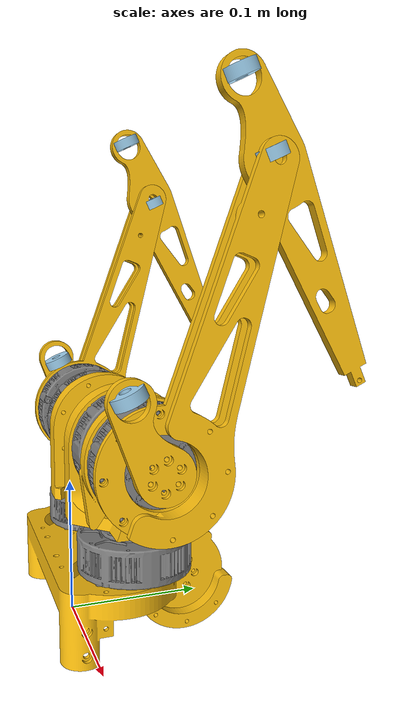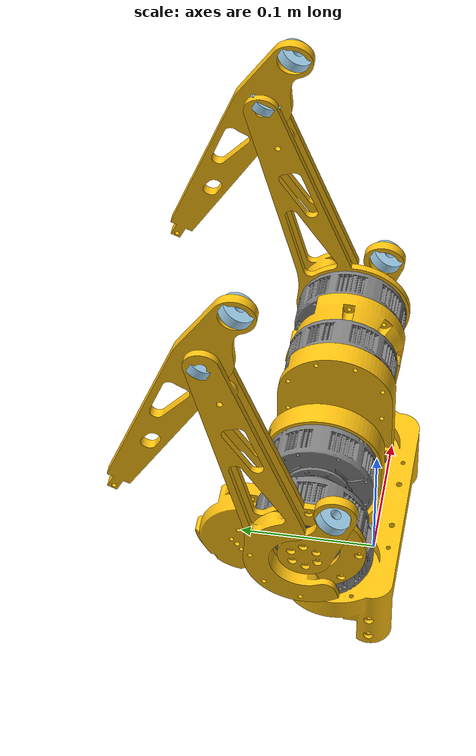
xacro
<?xml version="1.0" ?>
<!-- Generated using onshape-to-robot -->
<!-- Onshape https://cad.onshape.com/documents/ed1b080484db78e51ca91539/w/7397a458a49a8100160f52cd/e/9cc5d95f68bd237afce05dc0 -->
<robot name="robot" xmlns:xacro="http://www.ros.org/wiki/xacro">
<xacro:arg name="sim_mode" default="false"/>

<xacro:if value="$(arg sim_mode)">
  <xacro:include filename="$(find quadro)/description/leg.gazebo" />
</xacro:if>

<xacro:unless value="$(arg sim_mode)">
  <xacro:include filename="$(find quadro)/description/robot_ros2_control.xacro" />
</xacro:unless>
  <!-- Link motor -->
  <link name="world"/>

  <joint name="fixed" type="fixed">
    <parent link="world"/>
    <child link="motor"/>
  </joint>

  <link name="motor">
    <inertial>
      <origin xyz="0.000167595 0.0335997 0.0536899" rpy="0 0 0"/>
      <mass value="0.840992"/>
      <inertia ixx="0.000727199" ixy="-1.7348e-08" ixz="-1.37499e-06" iyy="0.00274647" iyz="-6.25483e-05" izz="0.00292446"/>
    </inertial>
    <!-- Part motor -->
    <visual>
      <origin xyz="-0.055 0.0342754 0.051" rpy="-1.5708 -1.5708 0"/>
      <geometry>
        <mesh filename="file://$(find quadro)/description/leg_assets/motor.stl"/>
      </geometry>
      <material name="motor_material">
        <color rgba="0.498039 0.498039 0.498039 1"/>
      </material>
    </visual>
    <collision>
      <origin xyz="-0.055 0.0342754 0.051" rpy="-1.5708 -1.5708 0"/>
      <geometry>
        <mesh filename="file://$(find quadro)/description/leg_assets/motor.stl"/>
      </geometry>
    </collision>
    <!-- Part back_plate -->
    <visual>
      <origin xyz="-1.38778e-17 0.0692754 0.04" rpy="1.5708 -0 0"/>
      <geometry>
        <mesh filename="file://$(find quadro)/description/leg_assets/back_plate.stl"/>
      </geometry>
      <material name="back_plate_material">
        <color rgba="1 0.756863 0.054902 1"/>
      </material>
    </visual>
    <collision>
      <origin xyz="-1.38778e-17 0.0692754 0.04" rpy="1.5708 -0 0"/>
      <geometry>
        <mesh filename="file://$(find quadro)/description/leg_assets/back_plate.stl"/>
      </geometry>
    </collision>
    <!-- Part back_stop -->
    <visual>
      <origin xyz="2.498e-16 0.0692754 -0.0079" rpy="-1.5708 -0 3.14159"/>
      <geometry>
        <mesh filename="file://$(find quadro)/description/leg_assets/back_stop.stl"/>
      </geometry>
      <material name="back_stop_material">
        <color rgba="1 0.756863 0.054902 1"/>
      </material>
    </visual>
    <collision>
      <origin xyz="2.498e-16 0.0692754 -0.0079" rpy="-1.5708 -0 3.14159"/>
      <geometry>
        <mesh filename="file://$(find quadro)/description/leg_assets/back_stop.stl"/>
      </geometry>
    </collision>
    <!-- Part motor_2 -->
    <visual>
      <origin xyz="0.055 0.0342754 0.051" rpy="-1.5708 -1.5708 0"/>
      <geometry>
        <mesh filename="file://$(find quadro)/description/leg_assets/motor.stl"/>
      </geometry>
      <material name="motor_2_material">
        <color rgba="0.498039 0.498039 0.498039 1"/>
      </material>
    </visual>
    <collision>
      <origin xyz="0.055 0.0342754 0.051" rpy="-1.5708 -1.5708 0"/>
      <geometry>
        <mesh filename="file://$(find quadro)/description/leg_assets/motor.stl"/>
      </geometry>
    </collision>
  </link>
  <!-- Link shaft -->
  <link name="shaft">
    <inertial>
      <origin xyz="0.000552419 -0.00826087 -0.0538481" rpy="0 0 0"/>
      <mass value="0.500834"/>
      <inertia ixx="0.000637639" ixy="3.82058e-06" ixz="1.69793e-06" iyy="0.000745753" iyz="-3.78573e-05" izz="0.000280763"/>
    </inertial>
    <!-- Part lin_1_support_br -->
    <visual>
      <origin xyz="-6.93889e-18 -0.028 -0.0735" rpy="-3.14159 -1.5708 0"/>
      <geometry>
        <mesh filename="file://$(find quadro)/description/leg_assets/lin_1_support_br.stl"/>
      </geometry>
      <material name="lin_1_support_br_material">
        <color rgba="1 0.756863 0.054902 1"/>
      </material>
    </visual>
    <collision>
      <origin xyz="-6.93889e-18 -0.028 -0.0735" rpy="-3.14159 -1.5708 0"/>
      <geometry>
        <mesh filename="file://$(find quadro)/description/leg_assets/lin_1_support_br.stl"/>
      </geometry>
    </collision>
    <!-- Part shaft -->
    <visual>
      <origin xyz="-6.93889e-18 0 0.01" rpy="1.5708 1.5708 0"/>
      <geometry>
        <mesh filename="file://$(find quadro)/description/leg_assets/shaft.stl"/>
      </geometry>
      <material name="shaft_material">
        <color rgba="0.498039 0.498039 0.498039 1"/>
      </material>
    </visual>
    <collision>
      <origin xyz="-6.93889e-18 0 0.01" rpy="1.5708 1.5708 0"/>
      <geometry>
        <mesh filename="file://$(find quadro)/description/leg_assets/shaft.stl"/>
      </geometry>
    </collision>
    <!-- Part motor_3 -->
    <visual>
      <origin xyz="-2.77556e-17 -0.017 -0.0735" rpy="-1.5708 2.17963e-16 1.5708"/>
      <geometry>
        <mesh filename="file://$(find quadro)/description/leg_assets/motor.stl"/>
      </geometry>
      <material name="motor_3_material">
        <color rgba="0.498039 0.498039 0.498039 1"/>
      </material>
    </visual>
    <collision>
      <origin xyz="-2.77556e-17 -0.017 -0.0735" rpy="-1.5708 2.17963e-16 1.5708"/>
      <geometry>
        <mesh filename="file://$(find quadro)/description/leg_assets/motor.stl"/>
      </geometry>
    </collision>
  </link>
  <!-- Link lin_2_br -->
  <link name="lin_2_br">
    <inertial>
      <origin xyz="-0.00583084 -0.0129347 -0.0439786" rpy="0 0 0"/>
      <mass value="0.55866"/>
      <inertia ixx="0.00153356" ixy="-0.000384147" ixz="-0.000112834" iyy="0.000635101" iyz="-0.000224573" izz="0.00157526"/>
    </inertial>
    <!-- Part lin_2_br -->
    <visual>
      <origin xyz="-0.0577297 0.123802 -0.0195" rpy="1.5708 -4.403e-17 2.00713"/>
      <geometry>
        <mesh filename="file://$(find quadro)/description/leg_assets/lin_2_br.stl"/>
      </geometry>
      <material name="lin_2_br_material">
        <color rgba="1 0.756863 0.054902 1"/>
      </material>
    </visual>
    <collision>
      <origin xyz="-0.0577297 0.123802 -0.0195" rpy="1.5708 -4.403e-17 2.00713"/>
      <geometry>
        <mesh filename="file://$(find quadro)/description/leg_assets/lin_2_br.stl"/>
      </geometry>
    </collision>
    <!-- Part shaft_2 -->
    <visual>
      <origin xyz="0 0 0.01" rpy="1.5708 1.5708 0"/>
      <geometry>
        <mesh filename="file://$(find quadro)/description/leg_assets/shaft.stl"/>
      </geometry>
      <material name="shaft_2_material">
        <color rgba="0.498039 0.498039 0.498039 1"/>
      </material>
    </visual>
    <collision>
      <origin xyz="0 0 0.01" rpy="1.5708 1.5708 0"/>
      <geometry>
        <mesh filename="file://$(find quadro)/description/leg_assets/shaft.stl"/>
      </geometry>
    </collision>
    <!-- Part lin_3_top_r -->
    <visual>
      <origin xyz="7.97973e-16 -1.94289e-16 -0.0645" rpy="1.5708 1.70749e-16 1.22173"/>
      <geometry>
        <mesh filename="file://$(find quadro)/description/leg_assets/lin_3_top_r.stl"/>
      </geometry>
      <material name="lin_3_top_r_material">
        <color rgba="1 0.756863 0.054902 1"/>
      </material>
    </visual>
    <collision>
      <origin xyz="7.97973e-16 -1.94289e-16 -0.0645" rpy="1.5708 1.70749e-16 1.22173"/>
      <geometry>
        <mesh filename="file://$(find quadro)/description/leg_assets/lin_3_top_r.stl"/>
      </geometry>
    </collision>
    <!-- Part lin_3_bot_r -->
    <visual>
      <origin xyz="8.18789e-16 -1.11022e-16 -0.0645" rpy="1.5708 -2.28168e-17 1.22173"/>
      <geometry>
        <mesh filename="file://$(find quadro)/description/leg_assets/lin_3_bot_r.stl"/>
      </geometry>
      <material name="lin_3_bot_r_material">
        <color rgba="1 0.756863 0.054902 1"/>
      </material>
    </visual>
    <collision>
      <origin xyz="8.18789e-16 -1.11022e-16 -0.0645" rpy="1.5708 -2.28168e-17 1.22173"/>
      <geometry>
        <mesh filename="file://$(find quadro)/description/leg_assets/lin_3_bot_r.stl"/>
      </geometry>
    </collision>
    <!-- Part motor_4 -->
    <visual>
      <origin xyz="8.18789e-16 -1.11022e-16 -0.0385" rpy="2.70526 1.5708 0"/>
      <geometry>
        <mesh filename="file://$(find quadro)/description/leg_assets/motor.stl"/>
      </geometry>
      <material name="motor_4_material">
        <color rgba="0.498039 0.498039 0.498039 1"/>
      </material>
    </visual>
    <collision>
      <origin xyz="8.18789e-16 -1.11022e-16 -0.0385" rpy="2.70526 1.5708 0"/>
      <geometry>
        <mesh filename="file://$(find quadro)/description/leg_assets/motor.stl"/>
      </geometry>
    </collision>
    <!-- Part bearing -->
    <visual>
      <origin xyz="-0.068404 -0.187939 -0.074" rpy="-3.14159 -1.01626e-15 0.436332"/>
      <geometry>
        <mesh filename="file://$(find quadro)/description/leg_assets/bearing.stl"/>
      </geometry>
      <material name="bearing_material">
        <color rgba="0.615686 0.811765 0.929412 1"/>
      </material>
    </visual>
    <collision>
      <origin xyz="-0.068404 -0.187939 -0.074" rpy="-3.14159 -1.01626e-15 0.436332"/>
      <geometry>
        <mesh filename="file://$(find quadro)/description/leg_assets/bearing.stl"/>
      </geometry>
    </collision>
  </link>
  <!-- Link lin_top_r -->
  <link name="lin_top_r">
    <inertial>
      <origin xyz="0.000209323 -0.00444903 -0.0125923" rpy="0 0 0"/>
      <mass value="0.140118"/>
      <inertia ixx="4.45628e-05" ixy="6.46821e-07" ixz="3.78582e-07" iyy="1.92125e-05" iyz="-8.04655e-06" izz="4.62705e-05"/>
    </inertial>
    <!-- Part lin_top_r -->
    <visual>
      <origin xyz="-2.77556e-17 -2.77556e-17 0.003" rpy="1.5708 8.71885e-16 1.11022e-16"/>
      <geometry>
        <mesh filename="file://$(find quadro)/description/leg_assets/lin_top_r.stl"/>
      </geometry>
      <material name="lin_top_r_material">
        <color rgba="1 0.756863 0.054902 1"/>
      </material>
    </visual>
    <collision>
      <origin xyz="-2.77556e-17 -2.77556e-17 0.003" rpy="1.5708 8.71885e-16 1.11022e-16"/>
      <geometry>
        <mesh filename="file://$(find quadro)/description/leg_assets/lin_top_r.stl"/>
      </geometry>
    </collision>
    <!-- Part bearing_2 -->
    <visual>
      <origin xyz="0 -0.05 -0.0255" rpy="3.14159 -1.52333e-15 1.11022e-16"/>
      <geometry>
        <mesh filename="file://$(find quadro)/description/leg_assets/bearing.stl"/>
      </geometry>
      <material name="bearing_2_material">
        <color rgba="0.615686 0.811765 0.929412 1"/>
      </material>
    </visual>
    <collision>
      <origin xyz="0 -0.05 -0.0255" rpy="3.14159 -1.52333e-15 1.11022e-16"/>
      <geometry>
        <mesh filename="file://$(find quadro)/description/leg_assets/bearing.stl"/>
      </geometry>
    </collision>
    <!-- Part shaft_3 -->
    <visual>
      <origin xyz="-2.77556e-17 -1.38778e-17 0.01" rpy="1.5708 1.5708 0"/>
      <geometry>
        <mesh filename="file://$(find quadro)/description/leg_assets/shaft.stl"/>
      </geometry>
      <material name="shaft_3_material">
        <color rgba="0.498039 0.498039 0.498039 1"/>
      </material>
    </visual>
    <collision>
      <origin xyz="-2.77556e-17 -1.38778e-17 0.01" rpy="1.5708 1.5708 0"/>
      <geometry>
        <mesh filename="file://$(find quadro)/description/leg_assets/shaft.stl"/>
      </geometry>
    </collision>
  </link>
  <!-- Joint from lin_2_br to lin_top_r -->
  <joint name="joint_br_3" type="revolute">
    <origin xyz="8.18789e-16 -8.32667e-17 -0.0485" rpy="1.70478e-15 -9.46644e-17 0.436332"/>
    <parent link="lin_2_br"/>
    <child link="lin_top_r"/>
    <axis xyz="0 0 -1"/>
    <limit effort="10" velocity="10" lower="-6.281592653589793" upper="6.281592653589793"/>
  </joint>
  <!-- Link lin_4_r -->
  <link name="lin_4_r">
    <inertial>
      <origin xyz="-0.00037679 -0.0270176 -5.21118e-10" rpy="0 0 0"/>
      <mass value="0.0488058"/>
      <inertia ixx="0.000183398" ixy="1.69668e-06" ixz="2.68516e-13" iyy="4.65047e-06" iyz="1.73007e-12" izz="0.00018765"/>
    </inertial>
    <!-- Part lin_4_r -->
    <visual>
      <origin xyz="0.2 -4.02456e-15 -0.0085" rpy="-1.5708 1.90985e-18 -2.03171e-14"/>
      <geometry>
        <mesh filename="file://$(find quadro)/description/leg_assets/lin_4_r.stl"/>
      </geometry>
      <material name="lin_4_r_material">
        <color rgba="1 0.756863 0.054902 1"/>
      </material>
    </visual>
    <collision>
      <origin xyz="0.2 -4.02456e-15 -0.0085" rpy="-1.5708 1.90985e-18 -2.03171e-14"/>
      <geometry>
        <mesh filename="file://$(find quadro)/description/leg_assets/lin_4_r.stl"/>
      </geometry>
    </collision>
    <!-- Part bearing_3 -->
    <visual>
      <origin xyz="8.88178e-16 0.05 -4.16334e-17" rpy="3.14159 4.78908e-17 -2.00395e-14"/>
      <geometry>
        <mesh filename="file://$(find quadro)/description/leg_assets/bearing.stl"/>
      </geometry>
      <material name="bearing_3_material">
        <color rgba="0.615686 0.811765 0.929412 1"/>
      </material>
    </visual>
    <collision>
      <origin xyz="8.88178e-16 0.05 -4.16334e-17" rpy="3.14159 4.78908e-17 -2.00395e-14"/>
      <geometry>
        <mesh filename="file://$(find quadro)/description/leg_assets/bearing.stl"/>
      </geometry>
    </collision>
  </link>
  <!-- Joint from lin_2_br to lin_4_r -->
  <joint name="br_l4_l3" type="revolute">
    <origin xyz="-0.068404 -0.187939 -0.074" rpy="-3.14159 -1.01626e-15 0.436332"/>
    <parent link="lin_2_br"/>
    <child link="lin_4_r"/>
    <axis xyz="0 0 -1"/>
    <limit effort="10" velocity="10" lower="-6.281592653589793" upper="6.281592653589793"/>
    <mimic joint="joint_br_3" multiplier="-1.0"/>
  </joint>
  <!-- Joint from shaft to lin_2_br -->
  <joint name="joint_br_2" type="revolute">
    <origin xyz="-2.77556e-17 -0.007 -0.0735" rpy="1.5708 4.05346e-15 4.12283e-16"/>
    <parent link="shaft"/>
    <child link="lin_2_br"/>
    <axis xyz="0 0 -1"/>
    <limit effort="10" velocity="10" lower="-6.281592653589793" upper="6.281592653589793"/>
  </joint>
  <!-- Joint from motor to shaft -->
  <joint name="joint_br_1" type="revolute">
    <origin xyz="-0.055 0.0342754 0.061" rpy="3.14159 4.55869e-16 -1.5708"/>
    <parent link="motor"/>
    <child link="shaft"/>
    <axis xyz="0 0 -1"/>
    <limit effort="10" velocity="10" lower="-6.281592653589793" upper="6.281592653589793"/>
  </joint>
  <!-- Link shaft_2 -->
  <link name="shaft_2">
    <inertial>
      <origin xyz="0.000552419 0.00826087 -0.0535667" rpy="0 0 0"/>
      <mass value="0.500834"/>
      <inertia ixx="0.000632059" ixy="-3.82058e-06" ixz="1.6979e-06" iyy="0.000740174" iyz="3.83796e-05" izz="0.000280763"/>
    </inertial>
    <!-- Part shaft_4 -->
    <visual>
      <origin xyz="0 0 0.01" rpy="1.5708 1.5708 0"/>
      <geometry>
        <mesh filename="file://$(find quadro)/description/leg_assets/shaft.stl"/>
      </geometry>
      <material name="shaft_4_material">
        <color rgba="0.498039 0.498039 0.498039 1"/>
      </material>
    </visual>
    <collision>
      <origin xyz="0 0 0.01" rpy="1.5708 1.5708 0"/>
      <geometry>
        <mesh filename="file://$(find quadro)/description/leg_assets/shaft.stl"/>
      </geometry>
    </collision>
    <!-- Part motor_5 -->
    <visual>
      <origin xyz="0 0.017 -0.0735" rpy="1.5708 1.58313e-16 -1.5708"/>
      <geometry>
        <mesh filename="file://$(find quadro)/description/leg_assets/motor.stl"/>
      </geometry>
      <material name="motor_5_material">
        <color rgba="0.498039 0.498039 0.498039 1"/>
      </material>
    </visual>
    <collision>
      <origin xyz="0 0.017 -0.0735" rpy="1.5708 1.58313e-16 -1.5708"/>
      <geometry>
        <mesh filename="file://$(find quadro)/description/leg_assets/motor.stl"/>
      </geometry>
    </collision>
    <!-- Part lin_1_support_bl -->
    <visual>
      <origin xyz="6.93889e-18 0.097 -0.0735" rpy="3.14159 -1.5708 0"/>
      <geometry>
        <mesh filename="file://$(find quadro)/description/leg_assets/lin_1_support_bl.stl"/>
      </geometry>
      <material name="lin_1_support_bl_material">
        <color rgba="1 0.756863 0.054902 1"/>
      </material>
    </visual>
    <collision>
      <origin xyz="6.93889e-18 0.097 -0.0735" rpy="3.14159 -1.5708 0"/>
      <geometry>
        <mesh filename="file://$(find quadro)/description/leg_assets/lin_1_support_bl.stl"/>
      </geometry>
    </collision>
  </link>
  <!-- Link motor_2 -->
  <link name="motor_2">
    <inertial>
      <origin xyz="-0.00512367 0.0104232 -0.0435875" rpy="0 0 0"/>
      <mass value="0.551476"/>
      <inertia ixx="0.00130661" ixy="0.000304518" ixz="-9.96006e-05" iyy="0.000599134" iyz="0.000185395" izz="0.00132552"/>
    </inertial>
    <!-- Part lin_3_top_l -->
    <visual>
      <origin xyz="8.32667e-16 4.16334e-16 0.087" rpy="-1.5708 7.63748e-16 -1.22173"/>
      <geometry>
        <mesh filename="file://$(find quadro)/description/leg_assets/lin_3_top_l.stl"/>
      </geometry>
      <material name="lin_3_top_l_material">
        <color rgba="1 0.756863 0.054902 1"/>
      </material>
    </visual>
    <collision>
      <origin xyz="8.32667e-16 4.16334e-16 0.087" rpy="-1.5708 7.63748e-16 -1.22173"/>
      <geometry>
        <mesh filename="file://$(find quadro)/description/leg_assets/lin_3_top_l.stl"/>
      </geometry>
    </collision>
    <!-- Part lin_2_bl -->
    <visual>
      <origin xyz="6.93889e-18 2.77556e-17 -0.0195" rpy="1.5708 3.2918e-17 1.13446"/>
      <geometry>
        <mesh filename="file://$(find quadro)/description/leg_assets/lin_2_bl.stl"/>
      </geometry>
      <material name="lin_2_bl_material">
        <color rgba="1 0.756863 0.054902 1"/>
      </material>
    </visual>
    <collision>
      <origin xyz="6.93889e-18 2.77556e-17 -0.0195" rpy="1.5708 3.2918e-17 1.13446"/>
      <geometry>
        <mesh filename="file://$(find quadro)/description/leg_assets/lin_2_bl.stl"/>
      </geometry>
    </collision>
    <!-- Part lin_3_bot_l -->
    <visual>
      <origin xyz="7.07767e-16 1.11022e-16 0.087" rpy="-1.5708 -4.29742e-16 -1.22173"/>
      <geometry>
        <mesh filename="file://$(find quadro)/description/leg_assets/lin_3_bot_l.stl"/>
      </geometry>
      <material name="lin_3_bot_l_material">
        <color rgba="1 0.756863 0.054902 1"/>
      </material>
    </visual>
    <collision>
      <origin xyz="7.07767e-16 1.11022e-16 0.087" rpy="-1.5708 -4.29742e-16 -1.22173"/>
      <geometry>
        <mesh filename="file://$(find quadro)/description/leg_assets/lin_3_bot_l.stl"/>
      </geometry>
    </collision>
    <!-- Part shaft_5 -->
    <visual>
      <origin xyz="-6.93889e-18 0 0.01" rpy="1.5708 1.5708 0"/>
      <geometry>
        <mesh filename="file://$(find quadro)/description/leg_assets/shaft.stl"/>
      </geometry>
      <material name="shaft_5_material">
        <color rgba="0.498039 0.498039 0.498039 1"/>
      </material>
    </visual>
    <collision>
      <origin xyz="-6.93889e-18 0 0.01" rpy="1.5708 1.5708 0"/>
      <geometry>
        <mesh filename="file://$(find quadro)/description/leg_assets/shaft.stl"/>
      </geometry>
    </collision>
    <!-- Part motor_6 -->
    <visual>
      <origin xyz="9.08995e-16 8.32667e-17 -0.0385" rpy="-2.70526 1.5708 0"/>
      <geometry>
        <mesh filename="file://$(find quadro)/description/leg_assets/motor.stl"/>
      </geometry>
      <material name="motor_6_material">
        <color rgba="0.498039 0.498039 0.498039 1"/>
      </material>
    </visual>
    <collision>
      <origin xyz="9.08995e-16 8.32667e-17 -0.0385" rpy="-2.70526 1.5708 0"/>
      <geometry>
        <mesh filename="file://$(find quadro)/description/leg_assets/motor.stl"/>
      </geometry>
    </collision>
  </link>
  <!-- Link shaft_3 -->
  <link name="shaft_3">
    <inertial>
      <origin xyz="0.00329395 0.00299792 -0.0125923" rpy="0 0 0"/>
      <mass value="0.140118"/>
      <inertia ixx="3.12408e-05" ixy="-1.26751e-05" ixz="5.95745e-06" iyy="3.25345e-05" iyz="5.42205e-06" izz="4.62705e-05"/>
    </inertial>
    <!-- Part shaft_6 -->
    <visual>
      <origin xyz="1.04083e-17 0 0.01" rpy="1.5708 1.5708 0"/>
      <geometry>
        <mesh filename="file://$(find quadro)/description/leg_assets/shaft.stl"/>
      </geometry>
      <material name="shaft_6_material">
        <color rgba="0.498039 0.498039 0.498039 1"/>
      </material>
    </visual>
    <collision>
      <origin xyz="1.04083e-17 0 0.01" rpy="1.5708 1.5708 0"/>
      <geometry>
        <mesh filename="file://$(find quadro)/description/leg_assets/shaft.stl"/>
      </geometry>
    </collision>
    <!-- Part bearing_4 -->
    <visual>
      <origin xyz="0.0353553 0.0353553 -0.0255" rpy="3.14159 1.92161e-16 -0.785398"/>
      <geometry>
        <mesh filename="file://$(find quadro)/description/leg_assets/bearing.stl"/>
      </geometry>
      <material name="bearing_4_material">
        <color rgba="0.615686 0.811765 0.929412 1"/>
      </material>
    </visual>
    <collision>
      <origin xyz="0.0353553 0.0353553 -0.0255" rpy="3.14159 1.92161e-16 -0.785398"/>
      <geometry>
        <mesh filename="file://$(find quadro)/description/leg_assets/bearing.stl"/>
      </geometry>
    </collision>
    <!-- Part lin_top_l -->
    <visual>
      <origin xyz="-2.42861e-17 5.55112e-17 0.1545" rpy="-1.5708 1.3665e-16 -0.785398"/>
      <geometry>
        <mesh filename="file://$(find quadro)/description/leg_assets/lin_top_l.stl"/>
      </geometry>
      <material name="lin_top_l_material">
        <color rgba="1 0.756863 0.054902 1"/>
      </material>
    </visual>
    <collision>
      <origin xyz="-2.42861e-17 5.55112e-17 0.1545" rpy="-1.5708 1.3665e-16 -0.785398"/>
      <geometry>
        <mesh filename="file://$(find quadro)/description/leg_assets/lin_top_l.stl"/>
      </geometry>
    </collision>
  </link>
  <!-- Joint from motor_2 to shaft_3 -->
  <joint name="joint_bl_3" type="revolute">
    <origin xyz="9.08995e-16 1.11022e-16 -0.0485" rpy="8.86613e-16 -1.51681e-15 0.349066"/>
    <parent link="motor_2"/>
    <child link="shaft_3"/>
    <axis xyz="0 0 1"/>
    <limit effort="10" velocity="10" lower="-6.281592653589793" upper="6.281592653589793"/>
  </joint>
  <!-- Link lin_4_l -->
  <link name="lin_4_l">
    <inertial>
      <origin xyz="-0.000328446 -0.0235508 -0.0035" rpy="0 0 0"/>
      <mass value="0.0559903"/>
      <inertia ixx="0.000188216" ixy="1.63294e-06" ixz="2.67287e-13" iyy="4.89802e-06" iyz="1.6419e-12" izz="0.000192656"/>
    </inertial>
    <!-- Part bearing_5 -->
    <visual>
      <origin xyz="-2.77556e-17 0.05 -0.0035" rpy="3.14159 3.81633e-23 -5.55112e-17"/>
      <geometry>
        <mesh filename="file://$(find quadro)/description/leg_assets/bearing.stl"/>
      </geometry>
      <material name="bearing_5_material">
        <color rgba="0.615686 0.811765 0.929412 1"/>
      </material>
    </visual>
    <collision>
      <origin xyz="-2.77556e-17 0.05 -0.0035" rpy="3.14159 3.81633e-23 -5.55112e-17"/>
      <geometry>
        <mesh filename="file://$(find quadro)/description/leg_assets/bearing.stl"/>
      </geometry>
    </collision>
    <!-- Part bearing_6 -->
    <visual>
      <origin xyz="2.77556e-17 -2.77556e-17 -0.0035" rpy="3.14159 3.81633e-23 -5.55112e-17"/>
      <geometry>
        <mesh filename="file://$(find quadro)/description/leg_assets/bearing.stl"/>
      </geometry>
      <material name="bearing_6_material">
        <color rgba="0.615686 0.811765 0.929412 1"/>
      </material>
    </visual>
    <collision>
      <origin xyz="2.77556e-17 -2.77556e-17 -0.0035" rpy="3.14159 3.81633e-23 -5.55112e-17"/>
      <geometry>
        <mesh filename="file://$(find quadro)/description/leg_assets/bearing.stl"/>
      </geometry>
    </collision>
    <!-- Part lin_4_l -->
    <visual>
      <origin xyz="0.2 2.77556e-17 0.1565" rpy="-1.5708 -1.54136e-24 -5.55112e-17"/>
      <geometry>
        <mesh filename="file://$(find quadro)/description/leg_assets/lin_4_l.stl"/>
      </geometry>
      <material name="lin_4_l_material">
        <color rgba="1 0.756863 0.054902 1"/>
      </material>
    </visual>
    <collision>
      <origin xyz="0.2 2.77556e-17 0.1565" rpy="-1.5708 -1.54136e-24 -5.55112e-17"/>
      <geometry>
        <mesh filename="file://$(find quadro)/description/leg_assets/lin_4_l.stl"/>
      </geometry>
    </collision>
  </link>
  <!-- Joint from motor_2 to lin_4_l -->
  <joint name="bl_l4_l3" type="revolute">
    <origin xyz="-0.068404 0.187939 -0.0705" rpy="7.91597e-16 -1.43092e-15 -0.436332"/>
    <parent link="motor_2"/>
    <child link="lin_4_l"/>
    <axis xyz="0 0 1"/>
    <limit effort="10" velocity="10" lower="-6.281592653589793" upper="6.281592653589793"/>
    <mimic joint="joint_bl_3" multiplier="1.0"/>
  </joint>
  <!-- Joint from shaft_2 to motor_2 -->
  <joint name="joint_bl_2" type="revolute">
    <origin xyz="-6.93889e-18 0.007 -0.0735" rpy="-1.5708 6.80778e-16 -1.26978e-15"/>
    <parent link="shaft_2"/>
    <child link="motor_2"/>
    <axis xyz="0 0 1"/>
    <limit effort="10" velocity="10" lower="-6.281592653589793" upper="6.281592653589793"/>
  </joint>
  <!-- Joint from motor to shaft_2 -->
  <joint name="joint_bl_1" type="revolute">
    <origin xyz="0.055 0.0342754 0.061" rpy="-3.14159 2.64698e-23 -1.5708"/>
    <parent link="motor"/>
    <child link="shaft_2"/>
    <axis xyz="0 0 -1"/>
   <limit effort="10" velocity="10" lower="-6.281592653589793" upper="6.281592653589793"/>
  </joint>
</robot>
